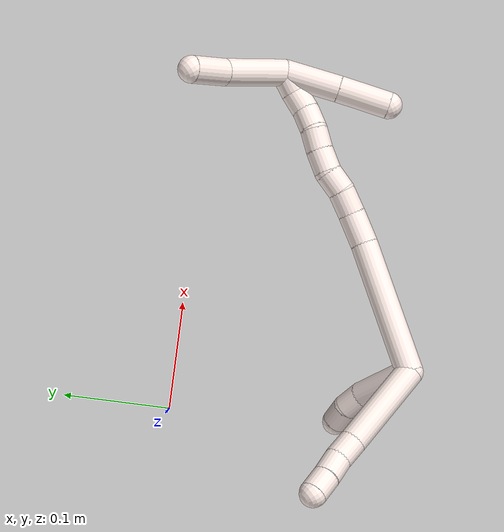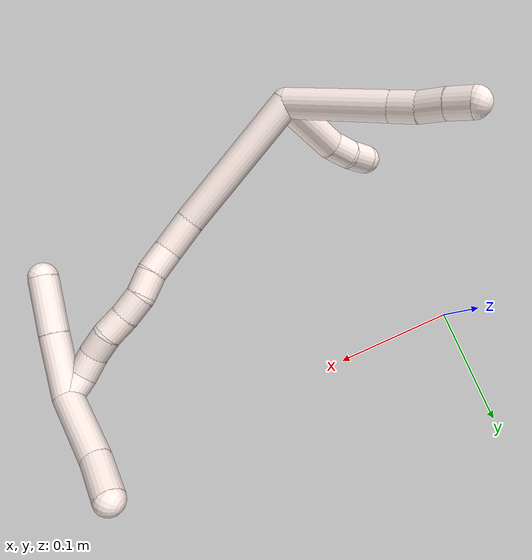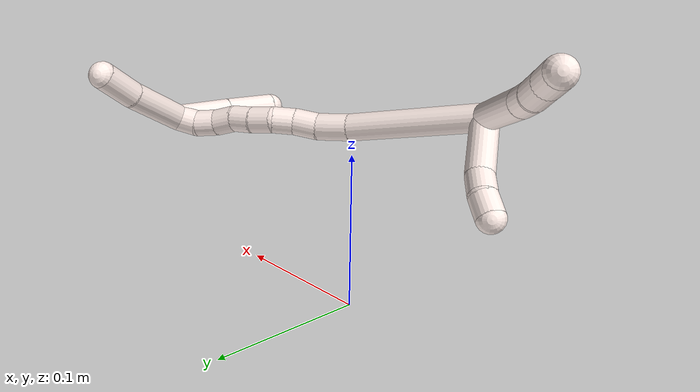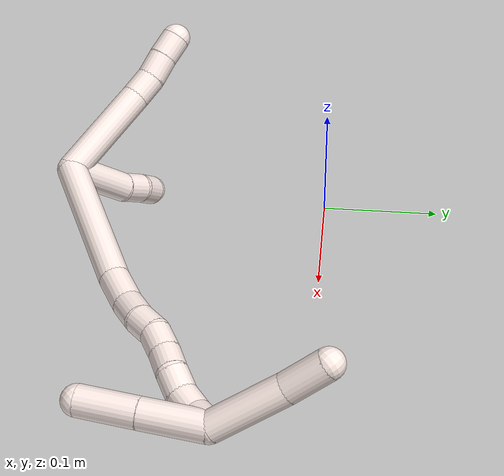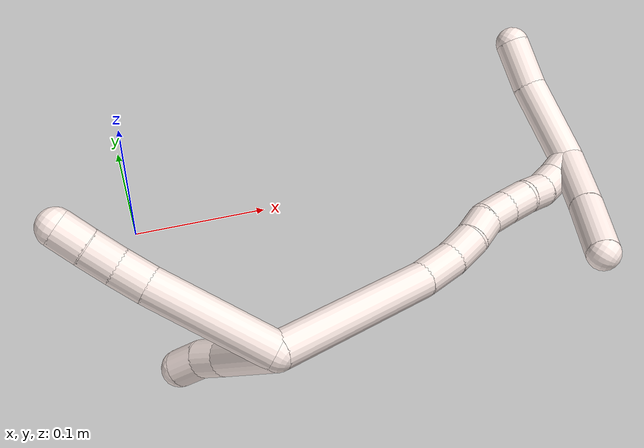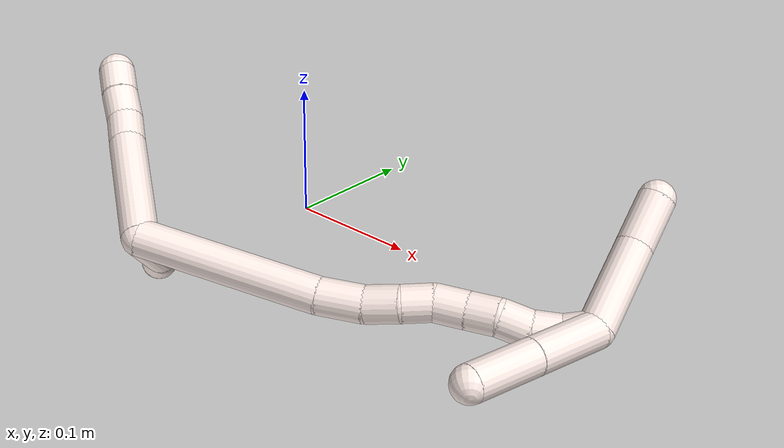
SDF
<sdf version="1.7">
 <world name="default">
  <model name="11">
   <static>0</static>
   <link name="11">
    <collision name="collision-cylinder-e_1_2_8">
     <pose>-0.00721 0.008357 -0.041485 -2.9428 -0.168749 1.40676</pose>
     <geometry><cylinder><radius>0.0125</radius><length>0.085856</length></cylinder></geometry>
     <surface>
      <friction><ode><mu>1.16</mu><mu2>1.16</mu2><slip1>0</slip1><slip2>0</slip2></ode></friction>
      <contact><ode><kp>1e+06</kp><kd>1</kd><max_vel>0</max_vel><min_depth>0.001</min_depth></ode></contact>
     </surface>
    </collision>
    <visual name="visual-cylinder-e_1_2_8">
     <pose>-0.00721 0.008357 -0.041485 -2.9428 -0.168749 1.40676</pose>
     <geometry><cylinder><radius>0.0125</radius><length>0.085856</length></cylinder></geometry>
     <material><ambient>1 0.933333 0.909804 1</ambient></material>
    </visual>
    <collision name="collision-cylinder-e_2_8_9">
     <pose>-0.015745 0.019287 -0.093565 -2.90342 -0.120981 0.937156</pose>
     <geometry><cylinder><radius>0.0125</radius><length>0.021968</length></cylinder></geometry>
     <surface>
      <friction><ode><mu>1.16</mu><mu2>1.16</mu2><slip1>0</slip1><slip2>0</slip2></ode></friction>
      <contact><ode><kp>1e+06</kp><kd>1</kd><max_vel>0</max_vel><min_depth>0.001</min_depth></ode></contact>
     </surface>
    </collision>
    <visual name="visual-cylinder-e_2_8_9">
     <pose>-0.015745 0.019287 -0.093565 -2.90342 -0.120981 0.937156</pose>
     <geometry><cylinder><radius>0.0125</radius><length>0.021968</length></cylinder></geometry>
     <material><ambient>1 0.933333 0.909804 1</ambient></material>
    </visual>
    <collision name="collision-cylinder-e_3_9_10">
     <pose>-0.018317 0.026284 -0.113951 -2.71706 -0.115458 0.523995</pose>
     <geometry><cylinder><radius>0.0125</radius><length>0.02163</length></cylinder></geometry>
     <surface>
      <friction><ode><mu>1.16</mu><mu2>1.16</mu2><slip1>0</slip1><slip2>0</slip2></ode></friction>
      <contact><ode><kp>1e+06</kp><kd>1</kd><max_vel>0</max_vel><min_depth>0.001</min_depth></ode></contact>
     </surface>
    </collision>
    <visual name="visual-cylinder-e_3_9_10">
     <pose>-0.018317 0.026284 -0.113951 -2.71706 -0.115458 0.523995</pose>
     <geometry><cylinder><radius>0.0125</radius><length>0.02163</length></cylinder></geometry>
     <material><ambient>1 0.933333 0.909804 1</ambient></material>
    </visual>
    <collision name="collision-cylinder-e_4_10_6">
     <pose>-0.020464 0.034278 -0.133331 -2.78537 -0.087835 0.478867</pose>
     <geometry><cylinder><radius>0.0125</radius><length>0.020546</length></cylinder></geometry>
     <surface>
      <friction><ode><mu>1.16</mu><mu2>1.16</mu2><slip1>0</slip1><slip2>0</slip2></ode></friction>
      <contact><ode><kp>1e+06</kp><kd>1</kd><max_vel>0</max_vel><min_depth>0.001</min_depth></ode></contact>
     </surface>
    </collision>
    <visual name="visual-cylinder-e_4_10_6">
     <pose>-0.020464 0.034278 -0.133331 -2.78537 -0.087835 0.478867</pose>
     <geometry><cylinder><radius>0.0125</radius><length>0.020546</length></cylinder></geometry>
     <material><ambient>1 0.933333 0.909804 1</ambient></material>
    </visual>
    <collision name="collision-cylinder-e_1_2_11">
     <pose>-0.0078 -0.022741 -0.016892 2.20967 -0.268673 -0.525086</pose>
     <geometry><cylinder><radius>0.0125</radius><length>0.058766</length></cylinder></geometry>
     <surface>
      <friction><ode><mu>1.16</mu><mu2>1.16</mu2><slip1>0</slip1><slip2>0</slip2></ode></friction>
      <contact><ode><kp>1e+06</kp><kd>1</kd><max_vel>0</max_vel><min_depth>0.001</min_depth></ode></contact>
     </surface>
    </collision>
    <visual name="visual-cylinder-e_1_2_11">
     <pose>-0.0078 -0.022741 -0.016892 2.20967 -0.268673 -0.525086</pose>
     <geometry><cylinder><radius>0.0125</radius><length>0.058766</length></cylinder></geometry>
     <material><ambient>1 0.933333 0.909804 1</ambient></material>
    </visual>
    <collision name="collision-cylinder-e_2_11_12">
     <pose>-0.019578 -0.051811 -0.04093 2.41675 -0.394891 -0.970977</pose>
     <geometry><cylinder><radius>0.0125</radius><length>0.020681</length></cylinder></geometry>
     <surface>
      <friction><ode><mu>1.16</mu><mu2>1.16</mu2><slip1>0</slip1><slip2>0</slip2></ode></friction>
      <contact><ode><kp>1e+06</kp><kd>1</kd><max_vel>0</max_vel><min_depth>0.001</min_depth></ode></contact>
     </surface>
    </collision>
    <visual name="visual-cylinder-e_2_11_12">
     <pose>-0.019578 -0.051811 -0.04093 2.41675 -0.394891 -0.970977</pose>
     <geometry><cylinder><radius>0.0125</radius><length>0.020681</length></cylinder></geometry>
     <material><ambient>1 0.933333 0.909804 1</ambient></material>
    </visual>
    <collision name="collision-cylinder-e_3_12_5">
     <pose>-0.029646 -0.064352 -0.053544 2.29258 -0.634367 -1.25628</pose>
     <geometry><cylinder><radius>0.0125</radius><length>0.020553</length></cylinder></geometry>
     <surface>
      <friction><ode><mu>1.16</mu><mu2>1.16</mu2><slip1>0</slip1><slip2>0</slip2></ode></friction>
      <contact><ode><kp>1e+06</kp><kd>1</kd><max_vel>0</max_vel><min_depth>0.001</min_depth></ode></contact>
     </surface>
    </collision>
    <visual name="visual-cylinder-e_3_12_5">
     <pose>-0.029646 -0.064352 -0.053544 2.29258 -0.634367 -1.25628</pose>
     <geometry><cylinder><radius>0.0125</radius><length>0.020553</length></cylinder></geometry>
     <material><ambient>1 0.933333 0.909804 1</ambient></material>
    </visual>
    <collision name="collision-cylinder-e_1_2_13">
     <pose>0.051088 -0.029479 0.018684 1.0059 0.971459 0.565301</pose>
     <geometry><cylinder><radius>0.0125</radius><length>0.123743</length></cylinder></geometry>
     <surface>
      <friction><ode><mu>1.16</mu><mu2>1.16</mu2><slip1>0</slip1><slip2>0</slip2></ode></friction>
      <contact><ode><kp>1e+06</kp><kd>1</kd><max_vel>0</max_vel><min_depth>0.001</min_depth></ode></contact>
     </surface>
    </collision>
    <visual name="visual-cylinder-e_1_2_13">
     <pose>0.051088 -0.029479 0.018684 1.0059 0.971459 0.565301</pose>
     <geometry><cylinder><radius>0.0125</radius><length>0.123743</length></cylinder></geometry>
     <material><ambient>1 0.933333 0.909804 1</ambient></material>
    </visual>
    <collision name="collision-cylinder-e_2_13_14">
     <pose>0.115649 -0.065168 0.040646 1.08501 1.09036 0.70104</pose>
     <geometry><cylinder><radius>0.0125</radius><length>0.030386</length></cylinder></geometry>
     <surface>
      <friction><ode><mu>1.16</mu><mu2>1.16</mu2><slip1>0</slip1><slip2>0</slip2></ode></friction>
      <contact><ode><kp>1e+06</kp><kd>1</kd><max_vel>0</max_vel><min_depth>0.001</min_depth></ode></contact>
     </surface>
    </collision>
    <visual name="visual-cylinder-e_2_13_14">
     <pose>0.115649 -0.065168 0.040646 1.08501 1.09036 0.70104</pose>
     <geometry><cylinder><radius>0.0125</radius><length>0.030386</length></cylinder></geometry>
     <material><ambient>1 0.933333 0.909804 1</ambient></material>
    </visual>
    <collision name="collision-cylinder-e_3_14_15">
     <pose>0.140215 -0.074196 0.045274 1.12439 1.29615 0.890204</pose>
     <geometry><cylinder><radius>0.0125</radius><length>0.02305</length></cylinder></geometry>
     <surface>
      <friction><ode><mu>1.16</mu><mu2>1.16</mu2><slip1>0</slip1><slip2>0</slip2></ode></friction>
      <contact><ode><kp>1e+06</kp><kd>1</kd><max_vel>0</max_vel><min_depth>0.001</min_depth></ode></contact>
     </surface>
    </collision>
    <visual name="visual-cylinder-e_3_14_15">
     <pose>0.140215 -0.074196 0.045274 1.12439 1.29615 0.890204</pose>
     <geometry><cylinder><radius>0.0125</radius><length>0.02305</length></cylinder></geometry>
     <material><ambient>1 0.933333 0.909804 1</ambient></material>
    </visual>
    <collision name="collision-cylinder-e_4_15_16">
     <pose>0.160867 -0.080797 0.04615 1.69523 1.19144 1.30977</pose>
     <geometry><cylinder><radius>0.0125</radius><length>0.020582</length></cylinder></geometry>
     <surface>
      <friction><ode><mu>1.16</mu><mu2>1.16</mu2><slip1>0</slip1><slip2>0</slip2></ode></friction>
      <contact><ode><kp>1e+06</kp><kd>1</kd><max_vel>0</max_vel><min_depth>0.001</min_depth></ode></contact>
     </surface>
    </collision>
    <visual name="visual-cylinder-e_4_15_16">
     <pose>0.160867 -0.080797 0.04615 1.69523 1.19144 1.30977</pose>
     <geometry><cylinder><radius>0.0125</radius><length>0.020582</length></cylinder></geometry>
     <material><ambient>1 0.933333 0.909804 1</ambient></material>
    </visual>
    <collision name="collision-cylinder-e_5_16_17">
     <pose>0.179831 -0.089227 0.048416 1.03828 1.04994 0.639221</pose>
     <geometry><cylinder><radius>0.0125</radius><length>0.021683</length></cylinder></geometry>
     <surface>
      <friction><ode><mu>1.16</mu><mu2>1.16</mu2><slip1>0</slip1><slip2>0</slip2></ode></friction>
      <contact><ode><kp>1e+06</kp><kd>1</kd><max_vel>0</max_vel><min_depth>0.001</min_depth></ode></contact>
     </surface>
    </collision>
    <visual name="visual-cylinder-e_5_16_17">
     <pose>0.179831 -0.089227 0.048416 1.03828 1.04994 0.639221</pose>
     <geometry><cylinder><radius>0.0125</radius><length>0.021683</length></cylinder></geometry>
     <material><ambient>1 0.933333 0.909804 1</ambient></material>
    </visual>
    <collision name="collision-cylinder-e_6_17_18">
     <pose>0.198164 -0.097331 0.054341 0.826096 1.08625 0.517288</pose>
     <geometry><cylinder><radius>0.0125</radius><length>0.020182</length></cylinder></geometry>
     <surface>
      <friction><ode><mu>1.16</mu><mu2>1.16</mu2><slip1>0</slip1><slip2>0</slip2></ode></friction>
      <contact><ode><kp>1e+06</kp><kd>1</kd><max_vel>0</max_vel><min_depth>0.001</min_depth></ode></contact>
     </surface>
    </collision>
    <visual name="visual-cylinder-e_6_17_18">
     <pose>0.198164 -0.097331 0.054341 0.826096 1.08625 0.517288</pose>
     <geometry><cylinder><radius>0.0125</radius><length>0.020182</length></cylinder></geometry>
     <material><ambient>1 0.933333 0.909804 1</ambient></material>
    </visual>
    <collision name="collision-cylinder-e_7_18_19">
     <pose>0.214821 -0.10659 0.060298 1.12523 0.87678 0.574893</pose>
     <geometry><cylinder><radius>0.0125</radius><length>0.020109</length></cylinder></geometry>
     <surface>
      <friction><ode><mu>1.16</mu><mu2>1.16</mu2><slip1>0</slip1><slip2>0</slip2></ode></friction>
      <contact><ode><kp>1e+06</kp><kd>1</kd><max_vel>0</max_vel><min_depth>0.001</min_depth></ode></contact>
     </surface>
    </collision>
    <visual name="visual-cylinder-e_7_18_19">
     <pose>0.214821 -0.10659 0.060298 1.12523 0.87678 0.574893</pose>
     <geometry><cylinder><radius>0.0125</radius><length>0.020109</length></cylinder></geometry>
     <material><ambient>1 0.933333 0.909804 1</ambient></material>
    </visual>
    <collision name="collision-cylinder-e_8_19_20">
     <pose>0.231317 -0.117192 0.063862 1.40728 1.06435 0.926729</pose>
     <geometry><cylinder><radius>0.0125</radius><length>0.020051</length></cylinder></geometry>
     <surface>
      <friction><ode><mu>1.16</mu><mu2>1.16</mu2><slip1>0</slip1><slip2>0</slip2></ode></friction>
      <contact><ode><kp>1e+06</kp><kd>1</kd><max_vel>0</max_vel><min_depth>0.001</min_depth></ode></contact>
     </surface>
    </collision>
    <visual name="visual-cylinder-e_8_19_20">
     <pose>0.231317 -0.117192 0.063862 1.40728 1.06435 0.926729</pose>
     <geometry><cylinder><radius>0.0125</radius><length>0.020051</length></cylinder></geometry>
     <material><ambient>1 0.933333 0.909804 1</ambient></material>
    </visual>
    <collision name="collision-cylinder-e_9_20_1">
     <pose>0.250019 -0.123813 0.065026 1.3692 1.38566 1.19109</pose>
     <geometry><cylinder><radius>0.0125</radius><length>0.020214</length></cylinder></geometry>
     <surface>
      <friction><ode><mu>1.16</mu><mu2>1.16</mu2><slip1>0</slip1><slip2>0</slip2></ode></friction>
      <contact><ode><kp>1e+06</kp><kd>1</kd><max_vel>0</max_vel><min_depth>0.001</min_depth></ode></contact>
     </surface>
    </collision>
    <visual name="visual-cylinder-e_9_20_1">
     <pose>0.250019 -0.123813 0.065026 1.3692 1.38566 1.19109</pose>
     <geometry><cylinder><radius>0.0125</radius><length>0.020214</length></cylinder></geometry>
     <material><ambient>1 0.933333 0.909804 1</ambient></material>
    </visual>
    <collision name="collision-cylinder-e_1_1_21">
     <pose>0.24336 -0.113183 0.081206 -0.667275 -0.689544 0.247661</pose>
     <geometry><cylinder><radius>0.0125</radius><length>0.052165</length></cylinder></geometry>
     <surface>
      <friction><ode><mu>1.16</mu><mu2>1.16</mu2><slip1>0</slip1><slip2>0</slip2></ode></friction>
      <contact><ode><kp>1e+06</kp><kd>1</kd><max_vel>0</max_vel><min_depth>0.001</min_depth></ode></contact>
     </surface>
    </collision>
    <visual name="visual-cylinder-e_1_1_21">
     <pose>0.24336 -0.113183 0.081206 -0.667275 -0.689544 0.247661</pose>
     <geometry><cylinder><radius>0.0125</radius><length>0.052165</length></cylinder></geometry>
     <material><ambient>1 0.933333 0.909804 1</ambient></material>
    </visual>
    <collision name="collision-cylinder-e_2_21_4">
     <pose>0.211037 -0.089625 0.111201 -0.664046 -0.717724 0.257234</pose>
     <geometry><cylinder><radius>0.0125</radius><length>0.047835</length></cylinder></geometry>
     <surface>
      <friction><ode><mu>1.16</mu><mu2>1.16</mu2><slip1>0</slip1><slip2>0</slip2></ode></friction>
      <contact><ode><kp>1e+06</kp><kd>1</kd><max_vel>0</max_vel><min_depth>0.001</min_depth></ode></contact>
     </surface>
    </collision>
    <visual name="visual-cylinder-e_2_21_4">
     <pose>0.211037 -0.089625 0.111201 -0.664046 -0.717724 0.257234</pose>
     <geometry><cylinder><radius>0.0125</radius><length>0.047835</length></cylinder></geometry>
     <material><ambient>1 0.933333 0.909804 1</ambient></material>
    </visual>
    <collision name="collision-cylinder-e_1_1_22">
     <pose>0.275885 -0.12276 0.038005 -3.03698 0.52441 -2.75628</pose>
     <geometry><cylinder><radius>0.0125</radius><length>0.063639</length></cylinder></geometry>
     <surface>
      <friction><ode><mu>1.16</mu><mu2>1.16</mu2><slip1>0</slip1><slip2>0</slip2></ode></friction>
      <contact><ode><kp>1e+06</kp><kd>1</kd><max_vel>0</max_vel><min_depth>0.001</min_depth></ode></contact>
     </surface>
    </collision>
    <visual name="visual-cylinder-e_1_1_22">
     <pose>0.275885 -0.12276 0.038005 -3.03698 0.52441 -2.75628</pose>
     <geometry><cylinder><radius>0.0125</radius><length>0.063639</length></cylinder></geometry>
     <material><ambient>1 0.933333 0.909804 1</ambient></material>
    </visual>
    <collision name="collision-cylinder-e_2_22_3">
     <pose>0.301876 -0.116375 -0.00412 -2.90783 0.586297 -2.39961</pose>
     <geometry><cylinder><radius>0.0125</radius><length>0.036361</length></cylinder></geometry>
     <surface>
      <friction><ode><mu>1.16</mu><mu2>1.16</mu2><slip1>0</slip1><slip2>0</slip2></ode></friction>
      <contact><ode><kp>1e+06</kp><kd>1</kd><max_vel>0</max_vel><min_depth>0.001</min_depth></ode></contact>
     </surface>
    </collision>
    <visual name="visual-cylinder-e_2_22_3">
     <pose>0.301876 -0.116375 -0.00412 -2.90783 0.586297 -2.39961</pose>
     <geometry><cylinder><radius>0.0125</radius><length>0.036361</length></cylinder></geometry>
     <material><ambient>1 0.933333 0.909804 1</ambient></material>
    </visual>
    <collision name="collision-sphere-3">
     <pose>0.311935 -0.112867 -0.018852 0 -0 0</pose>
     <geometry><sphere><radius>0.0125</radius></sphere></geometry>
     <surface>
      <friction><ode><mu>1.16</mu><mu2>1.16</mu2><slip1>0</slip1><slip2>0</slip2></ode></friction>
      <contact><ode><kp>1e+06</kp><kd>1</kd><max_vel>0</max_vel><min_depth>0.001</min_depth></ode></contact>
     </surface>
    </collision>
    <visual name="visual-sphere-3">
     <pose>0.311935 -0.112867 -0.018852 0 -0 0</pose>
     <geometry><sphere><radius>0.0125</radius></sphere></geometry>
     <material><ambient>1 0.933333 0.909804 1</ambient></material>
    </visual>
    <collision name="collision-sphere-22">
     <pose>0.291817 -0.119883 0.010612 0 -0 0</pose>
     <geometry><sphere><radius>0.0125</radius></sphere></geometry>
     <surface>
      <friction><ode><mu>1.16</mu><mu2>1.16</mu2><slip1>0</slip1><slip2>0</slip2></ode></friction>
      <contact><ode><kp>1e+06</kp><kd>1</kd><max_vel>0</max_vel><min_depth>0.001</min_depth></ode></contact>
     </surface>
    </collision>
    <visual name="visual-sphere-22">
     <pose>0.291817 -0.119883 0.010612 0 -0 0</pose>
     <geometry><sphere><radius>0.0125</radius></sphere></geometry>
     <material><ambient>1 0.933333 0.909804 1</ambient></material>
    </visual>
    <collision name="collision-sphere-4">
     <pose>0.195307 -0.078521 0.12539 0 -0 0</pose>
     <geometry><sphere><radius>0.0125</radius></sphere></geometry>
     <surface>
      <friction><ode><mu>1.16</mu><mu2>1.16</mu2><slip1>0</slip1><slip2>0</slip2></ode></friction>
      <contact><ode><kp>1e+06</kp><kd>1</kd><max_vel>0</max_vel><min_depth>0.001</min_depth></ode></contact>
     </surface>
    </collision>
    <visual name="visual-sphere-4">
     <pose>0.195307 -0.078521 0.12539 0 -0 0</pose>
     <geometry><sphere><radius>0.0125</radius></sphere></geometry>
     <material><ambient>1 0.933333 0.909804 1</ambient></material>
    </visual>
    <collision name="collision-sphere-21">
     <pose>0.226767 -0.100729 0.097013 0 -0 0</pose>
     <geometry><sphere><radius>0.0125</radius></sphere></geometry>
     <surface>
      <friction><ode><mu>1.16</mu><mu2>1.16</mu2><slip1>0</slip1><slip2>0</slip2></ode></friction>
      <contact><ode><kp>1e+06</kp><kd>1</kd><max_vel>0</max_vel><min_depth>0.001</min_depth></ode></contact>
     </surface>
    </collision>
    <visual name="visual-sphere-21">
     <pose>0.226767 -0.100729 0.097013 0 -0 0</pose>
     <geometry><sphere><radius>0.0125</radius></sphere></geometry>
     <material><ambient>1 0.933333 0.909804 1</ambient></material>
    </visual>
    <collision name="collision-sphere-1">
     <pose>0.259953 -0.125636 0.065398 0 -0 0</pose>
     <geometry><sphere><radius>0.0125</radius></sphere></geometry>
     <surface>
      <friction><ode><mu>1.16</mu><mu2>1.16</mu2><slip1>0</slip1><slip2>0</slip2></ode></friction>
      <contact><ode><kp>1e+06</kp><kd>1</kd><max_vel>0</max_vel><min_depth>0.001</min_depth></ode></contact>
     </surface>
    </collision>
    <visual name="visual-sphere-1">
     <pose>0.259953 -0.125636 0.065398 0 -0 0</pose>
     <geometry><sphere><radius>0.0125</radius></sphere></geometry>
     <material><ambient>1 0.933333 0.909804 1</ambient></material>
    </visual>
    <collision name="collision-sphere-11">
     <pose>-0.0156 -0.045483 -0.033785 0 -0 0</pose>
     <geometry><sphere><radius>0.0125</radius></sphere></geometry>
     <surface>
      <friction><ode><mu>1.16</mu><mu2>1.16</mu2><slip1>0</slip1><slip2>0</slip2></ode></friction>
      <contact><ode><kp>1e+06</kp><kd>1</kd><max_vel>0</max_vel><min_depth>0.001</min_depth></ode></contact>
     </surface>
    </collision>
    <visual name="visual-sphere-11">
     <pose>-0.0156 -0.045483 -0.033785 0 -0 0</pose>
     <geometry><sphere><radius>0.0125</radius></sphere></geometry>
     <material><ambient>1 0.933333 0.909804 1</ambient></material>
    </visual>
    <collision name="collision-sphere-6">
     <pose>-0.021365 0.037847 -0.142922 0 -0 0</pose>
     <geometry><sphere><radius>0.0125</radius></sphere></geometry>
     <surface>
      <friction><ode><mu>1.16</mu><mu2>1.16</mu2><slip1>0</slip1><slip2>0</slip2></ode></friction>
      <contact><ode><kp>1e+06</kp><kd>1</kd><max_vel>0</max_vel><min_depth>0.001</min_depth></ode></contact>
     </surface>
    </collision>
    <visual name="visual-sphere-6">
     <pose>-0.021365 0.037847 -0.142922 0 -0 0</pose>
     <geometry><sphere><radius>0.0125</radius></sphere></geometry>
     <material><ambient>1 0.933333 0.909804 1</ambient></material>
    </visual>
    <collision name="collision-sphere-10">
     <pose>-0.019562 0.030709 -0.12374 0 -0 0</pose>
     <geometry><sphere><radius>0.0125</radius></sphere></geometry>
     <surface>
      <friction><ode><mu>1.16</mu><mu2>1.16</mu2><slip1>0</slip1><slip2>0</slip2></ode></friction>
      <contact><ode><kp>1e+06</kp><kd>1</kd><max_vel>0</max_vel><min_depth>0.001</min_depth></ode></contact>
     </surface>
    </collision>
    <visual name="visual-sphere-10">
     <pose>-0.019562 0.030709 -0.12374 0 -0 0</pose>
     <geometry><sphere><radius>0.0125</radius></sphere></geometry>
     <material><ambient>1 0.933333 0.909804 1</ambient></material>
    </visual>
    <collision name="collision-sphere-9">
     <pose>-0.017071 0.021859 -0.104161 0 -0 0</pose>
     <geometry><sphere><radius>0.0125</radius></sphere></geometry>
     <surface>
      <friction><ode><mu>1.16</mu><mu2>1.16</mu2><slip1>0</slip1><slip2>0</slip2></ode></friction>
      <contact><ode><kp>1e+06</kp><kd>1</kd><max_vel>0</max_vel><min_depth>0.001</min_depth></ode></contact>
     </surface>
    </collision>
    <visual name="visual-sphere-9">
     <pose>-0.017071 0.021859 -0.104161 0 -0 0</pose>
     <geometry><sphere><radius>0.0125</radius></sphere></geometry>
     <material><ambient>1 0.933333 0.909804 1</ambient></material>
    </visual>
    <collision name="collision-sphere-2">
     <geometry><sphere><radius>0.0125</radius></sphere></geometry>
     <surface>
      <friction><ode><mu>1.16</mu><mu2>1.16</mu2><slip1>0</slip1><slip2>0</slip2></ode></friction>
      <contact><ode><kp>1e+06</kp><kd>1</kd><max_vel>0</max_vel><min_depth>0.001</min_depth></ode></contact>
     </surface>
    </collision>
    <visual name="visual-sphere-2">
     <geometry><sphere><radius>0.0125</radius></sphere></geometry>
     <material><ambient>1 0.933333 0.909804 1</ambient></material>
    </visual>
    <collision name="collision-sphere-19">
     <pose>0.22255 -0.112394 0.06307 0 -0 0</pose>
     <geometry><sphere><radius>0.0125</radius></sphere></geometry>
     <surface>
      <friction><ode><mu>1.16</mu><mu2>1.16</mu2><slip1>0</slip1><slip2>0</slip2></ode></friction>
      <contact><ode><kp>1e+06</kp><kd>1</kd><max_vel>0</max_vel><min_depth>0.001</min_depth></ode></contact>
     </surface>
    </collision>
    <visual name="visual-sphere-19">
     <pose>0.22255 -0.112394 0.06307 0 -0 0</pose>
     <geometry><sphere><radius>0.0125</radius></sphere></geometry>
     <material><ambient>1 0.933333 0.909804 1</ambient></material>
    </visual>
    <collision name="collision-sphere-8">
     <pose>-0.014419 0.016714 -0.082969 0 -0 0</pose>
     <geometry><sphere><radius>0.0125</radius></sphere></geometry>
     <surface>
      <friction><ode><mu>1.16</mu><mu2>1.16</mu2><slip1>0</slip1><slip2>0</slip2></ode></friction>
      <contact><ode><kp>1e+06</kp><kd>1</kd><max_vel>0</max_vel><min_depth>0.001</min_depth></ode></contact>
     </surface>
    </collision>
    <visual name="visual-sphere-8">
     <pose>-0.014419 0.016714 -0.082969 0 -0 0</pose>
     <geometry><sphere><radius>0.0125</radius></sphere></geometry>
     <material><ambient>1 0.933333 0.909804 1</ambient></material>
    </visual>
    <collision name="collision-sphere-12">
     <pose>-0.023556 -0.058139 -0.048075 0 -0 0</pose>
     <geometry><sphere><radius>0.0125</radius></sphere></geometry>
     <surface>
      <friction><ode><mu>1.16</mu><mu2>1.16</mu2><slip1>0</slip1><slip2>0</slip2></ode></friction>
      <contact><ode><kp>1e+06</kp><kd>1</kd><max_vel>0</max_vel><min_depth>0.001</min_depth></ode></contact>
     </surface>
    </collision>
    <visual name="visual-sphere-12">
     <pose>-0.023556 -0.058139 -0.048075 0 -0 0</pose>
     <geometry><sphere><radius>0.0125</radius></sphere></geometry>
     <material><ambient>1 0.933333 0.909804 1</ambient></material>
    </visual>
    <collision name="collision-sphere-5">
     <pose>-0.035737 -0.070565 -0.059013 0 -0 0</pose>
     <geometry><sphere><radius>0.0125</radius></sphere></geometry>
     <surface>
      <friction><ode><mu>1.16</mu><mu2>1.16</mu2><slip1>0</slip1><slip2>0</slip2></ode></friction>
      <contact><ode><kp>1e+06</kp><kd>1</kd><max_vel>0</max_vel><min_depth>0.001</min_depth></ode></contact>
     </surface>
    </collision>
    <visual name="visual-sphere-5">
     <pose>-0.035737 -0.070565 -0.059013 0 -0 0</pose>
     <geometry><sphere><radius>0.0125</radius></sphere></geometry>
     <material><ambient>1 0.933333 0.909804 1</ambient></material>
    </visual>
    <collision name="collision-sphere-13">
     <pose>0.102176 -0.058958 0.037367 0 -0 0</pose>
     <geometry><sphere><radius>0.0125</radius></sphere></geometry>
     <surface>
      <friction><ode><mu>1.16</mu><mu2>1.16</mu2><slip1>0</slip1><slip2>0</slip2></ode></friction>
      <contact><ode><kp>1e+06</kp><kd>1</kd><max_vel>0</max_vel><min_depth>0.001</min_depth></ode></contact>
     </surface>
    </collision>
    <visual name="visual-sphere-13">
     <pose>0.102176 -0.058958 0.037367 0 -0 0</pose>
     <geometry><sphere><radius>0.0125</radius></sphere></geometry>
     <material><ambient>1 0.933333 0.909804 1</ambient></material>
    </visual>
    <collision name="collision-sphere-14">
     <pose>0.129122 -0.071377 0.043924 0 -0 0</pose>
     <geometry><sphere><radius>0.0125</radius></sphere></geometry>
     <surface>
      <friction><ode><mu>1.16</mu><mu2>1.16</mu2><slip1>0</slip1><slip2>0</slip2></ode></friction>
      <contact><ode><kp>1e+06</kp><kd>1</kd><max_vel>0</max_vel><min_depth>0.001</min_depth></ode></contact>
     </surface>
    </collision>
    <visual name="visual-sphere-14">
     <pose>0.129122 -0.071377 0.043924 0 -0 0</pose>
     <geometry><sphere><radius>0.0125</radius></sphere></geometry>
     <material><ambient>1 0.933333 0.909804 1</ambient></material>
    </visual>
    <collision name="collision-sphere-15">
     <pose>0.151308 -0.077016 0.046623 0 -0 0</pose>
     <geometry><sphere><radius>0.0125</radius></sphere></geometry>
     <surface>
      <friction><ode><mu>1.16</mu><mu2>1.16</mu2><slip1>0</slip1><slip2>0</slip2></ode></friction>
      <contact><ode><kp>1e+06</kp><kd>1</kd><max_vel>0</max_vel><min_depth>0.001</min_depth></ode></contact>
     </surface>
    </collision>
    <visual name="visual-sphere-15">
     <pose>0.151308 -0.077016 0.046623 0 -0 0</pose>
     <geometry><sphere><radius>0.0125</radius></sphere></geometry>
     <material><ambient>1 0.933333 0.909804 1</ambient></material>
    </visual>
    <collision name="collision-sphere-16">
     <pose>0.170427 -0.084579 0.045677 0 -0 0</pose>
     <geometry><sphere><radius>0.0125</radius></sphere></geometry>
     <surface>
      <friction><ode><mu>1.16</mu><mu2>1.16</mu2><slip1>0</slip1><slip2>0</slip2></ode></friction>
      <contact><ode><kp>1e+06</kp><kd>1</kd><max_vel>0</max_vel><min_depth>0.001</min_depth></ode></contact>
     </surface>
    </collision>
    <visual name="visual-sphere-16">
     <pose>0.170427 -0.084579 0.045677 0 -0 0</pose>
     <geometry><sphere><radius>0.0125</radius></sphere></geometry>
     <material><ambient>1 0.933333 0.909804 1</ambient></material>
    </visual>
    <collision name="collision-sphere-17">
     <pose>0.189234 -0.093875 0.051155 0 -0 0</pose>
     <geometry><sphere><radius>0.0125</radius></sphere></geometry>
     <surface>
      <friction><ode><mu>1.16</mu><mu2>1.16</mu2><slip1>0</slip1><slip2>0</slip2></ode></friction>
      <contact><ode><kp>1e+06</kp><kd>1</kd><max_vel>0</max_vel><min_depth>0.001</min_depth></ode></contact>
     </surface>
    </collision>
    <visual name="visual-sphere-17">
     <pose>0.189234 -0.093875 0.051155 0 -0 0</pose>
     <geometry><sphere><radius>0.0125</radius></sphere></geometry>
     <material><ambient>1 0.933333 0.909804 1</ambient></material>
    </visual>
    <collision name="collision-sphere-18">
     <pose>0.207093 -0.100787 0.057527 0 -0 0</pose>
     <geometry><sphere><radius>0.0125</radius></sphere></geometry>
     <surface>
      <friction><ode><mu>1.16</mu><mu2>1.16</mu2><slip1>0</slip1><slip2>0</slip2></ode></friction>
      <contact><ode><kp>1e+06</kp><kd>1</kd><max_vel>0</max_vel><min_depth>0.001</min_depth></ode></contact>
     </surface>
    </collision>
    <visual name="visual-sphere-18">
     <pose>0.207093 -0.100787 0.057527 0 -0 0</pose>
     <geometry><sphere><radius>0.0125</radius></sphere></geometry>
     <material><ambient>1 0.933333 0.909804 1</ambient></material>
    </visual>
    <collision name="collision-sphere-20">
     <pose>0.240085 -0.12199 0.064653 0 -0 0</pose>
     <geometry><sphere><radius>0.0125</radius></sphere></geometry>
     <surface>
      <friction><ode><mu>1.16</mu><mu2>1.16</mu2><slip1>0</slip1><slip2>0</slip2></ode></friction>
      <contact><ode><kp>1e+06</kp><kd>1</kd><max_vel>0</max_vel><min_depth>0.001</min_depth></ode></contact>
     </surface>
    </collision>
    <visual name="visual-sphere-20">
     <pose>0.240085 -0.12199 0.064653 0 -0 0</pose>
     <geometry><sphere><radius>0.0125</radius></sphere></geometry>
     <material><ambient>1 0.933333 0.909804 1</ambient></material>
    </visual>
    <inertial>
     <pose>0.115145 -0.057931 0.012744 0 -0 0</pose>
     <mass>0.75</mass>
     <inertia><ixx>0.000216</ixx><ixy>0</ixy><ixz>0</ixz><iyy>0.000262</iyy><iyz>0</iyz><izz>-7e-05</izz></inertia>
    </inertial>
   </link>
   <pose>0.062455 -0.211323 0.077877 1.86473 -0.403848 0.599086</pose>
  </model>
 </world>
</sdf>
